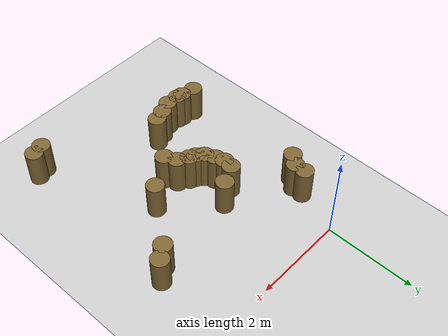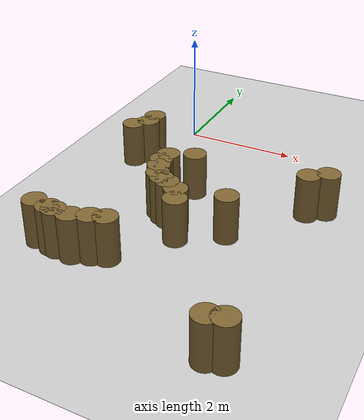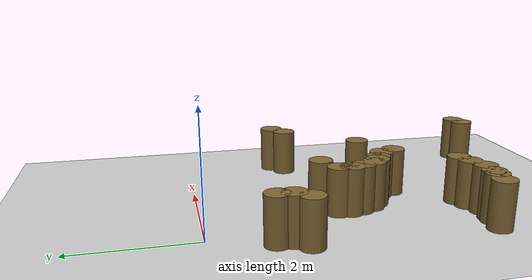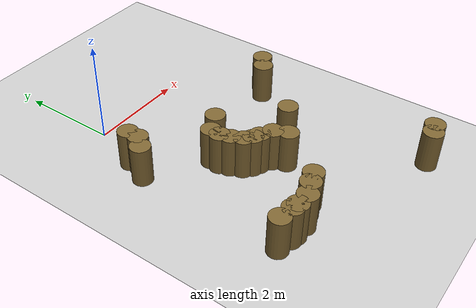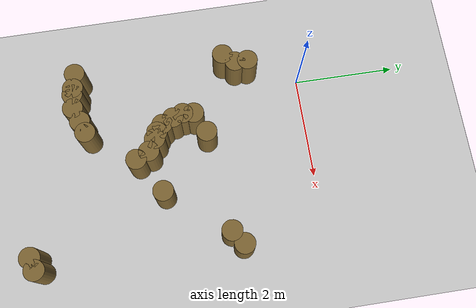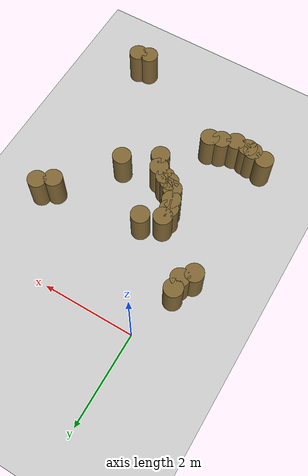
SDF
<sdf version="1.7">
 <world name="default">
  <model name="ground_plane">
   <static>1</static>
   <link name="link">
    <collision name="collision">
     <geometry><plane><normal>0 0 1</normal><size>100 100</size></plane></geometry>
     <surface><friction><ode><mu>100</mu><mu2>50</mu2></ode></friction></surface>
    </collision>
    <visual name="visual">
     <cast_shadows>0</cast_shadows>
     <geometry><plane><normal>0 0 1</normal><size>100 100</size></plane></geometry>
     <material>
      <script><uri>file://media/materials/scripts/gazebo.material</uri><name>Gazebo/Grey</name></script>
     </material>
    </visual>
   </link>
  </model>
  <model name="mini_cylinder_0_clone_0_clone_clone_clone_clone_4">
   <link name="link">
    <inertial>
     <mass>1</mass>
     <inertia><ixx>0.145833</ixx><ixy>0</ixy><ixz>0</ixz><iyy>0.145833</iyy><iyz>0</iyz><izz>0.125</izz></inertia>
    </inertial>
    <visual name="visual">
     <geometry><cylinder><radius>0.2</radius><length>0.8</length></cylinder></geometry>
     <material>
      <script><name>Gazebo/Grey</name><uri>file://media/materials/scripts/gazebo.material</uri></script>
      <shader type="vertex"><normal_map>__default__</normal_map></shader>
      <ambient>0.5 0.4 0.2 1</ambient>
      <diffuse>0.7 0.7 0.7 1</diffuse>
      <specular>0.01 0.01 0.01 1</specular>
      <emissive>0 0 0 1</emissive>
     </material>
    </visual>
    <collision name="collision">
     <geometry><cylinder><radius>0.2</radius><length>0.8</length></cylinder></geometry>
     <surface>
      <friction>
       <ode><mu>1</mu><mu2>1</mu2><fdir1>0 0 0</fdir1><slip1>0</slip1><slip2>0</slip2></ode>
       <torsional>
        <coefficient>1</coefficient>
        <patch_radius>0</patch_radius>
        <surface_radius>0</surface_radius>
        <use_patch_radius>1</use_patch_radius>
        <ode><slip>0</slip></ode>
       </torsional>
      </friction>
      <bounce><restitution_coefficient>0</restitution_coefficient><threshold>1e+06</threshold></bounce>
      <contact>
       <collide_without_contact>0</collide_without_contact>
       <collide_without_contact_bitmask>1</collide_without_contact_bitmask>
       <collide_bitmask>1</collide_bitmask>
       <ode>
        <soft_cfm>0</soft_cfm>
        <soft_erp>0.2</soft_erp>
        <kp>1e+13</kp>
        <kd>1</kd>
        <max_vel>0.01</max_vel>
        <min_depth>0</min_depth>
       </ode>
       <bullet>
        <split_impulse>1</split_impulse>
        <split_impulse_penetration_threshold>-0.01</split_impulse_penetration_threshold>
        <soft_cfm>0</soft_cfm>
        <soft_erp>0.2</soft_erp>
        <kp>1e+13</kp>
        <kd>1</kd>
       </bullet>
      </contact>
     </surface>
    </collision>
   </link>
   <static>1</static>
   <pose>-0.332515 -0.998036 0.4 0 -0 0</pose>
  </model>
  <model name="mini_cylinder_0_clone_0_clone_clone_clone_clone_5">
   <link name="link">
    <inertial>
     <mass>1</mass>
     <inertia><ixx>0.145833</ixx><ixy>0</ixy><ixz>0</ixz><iyy>0.145833</iyy><iyz>0</iyz><izz>0.125</izz></inertia>
    </inertial>
    <visual name="visual">
     <geometry><cylinder><radius>0.2</radius><length>0.8</length></cylinder></geometry>
     <material>
      <script><name>Gazebo/Grey</name><uri>file://media/materials/scripts/gazebo.material</uri></script>
      <shader type="vertex"><normal_map>__default__</normal_map></shader>
      <ambient>0.5 0.4 0.2 1</ambient>
      <diffuse>0.7 0.7 0.7 1</diffuse>
      <specular>0.01 0.01 0.01 1</specular>
      <emissive>0 0 0 1</emissive>
     </material>
    </visual>
    <collision name="collision">
     <geometry><cylinder><radius>0.2</radius><length>0.8</length></cylinder></geometry>
     <surface>
      <friction>
       <ode><mu>1</mu><mu2>1</mu2><fdir1>0 0 0</fdir1><slip1>0</slip1><slip2>0</slip2></ode>
       <torsional>
        <coefficient>1</coefficient>
        <patch_radius>0</patch_radius>
        <surface_radius>0</surface_radius>
        <use_patch_radius>1</use_patch_radius>
        <ode><slip>0</slip></ode>
       </torsional>
      </friction>
      <bounce><restitution_coefficient>0</restitution_coefficient><threshold>1e+06</threshold></bounce>
      <contact>
       <collide_without_contact>0</collide_without_contact>
       <collide_without_contact_bitmask>1</collide_without_contact_bitmask>
       <collide_bitmask>1</collide_bitmask>
       <ode>
        <soft_cfm>0</soft_cfm>
        <soft_erp>0.2</soft_erp>
        <kp>1e+13</kp>
        <kd>1</kd>
        <max_vel>0.01</max_vel>
        <min_depth>0</min_depth>
       </ode>
       <bullet>
        <split_impulse>1</split_impulse>
        <split_impulse_penetration_threshold>-0.01</split_impulse_penetration_threshold>
        <soft_cfm>0</soft_cfm>
        <soft_erp>0.2</soft_erp>
        <kp>1e+13</kp>
        <kd>1</kd>
       </bullet>
      </contact>
     </surface>
    </collision>
   </link>
   <static>1</static>
   <pose>0.594741 -2.19524 0.4 0 -0 0</pose>
  </model>
  <model name="mini_cylinder_0_clone_0_clone_clone_clone_clone_6">
   <link name="link">
    <inertial>
     <mass>1</mass>
     <inertia><ixx>0.145833</ixx><ixy>0</ixy><ixz>0</ixz><iyy>0.145833</iyy><iyz>0</iyz><izz>0.125</izz></inertia>
    </inertial>
    <visual name="visual">
     <geometry><cylinder><radius>0.2</radius><length>0.8</length></cylinder></geometry>
     <material>
      <script><name>Gazebo/Grey</name><uri>file://media/materials/scripts/gazebo.material</uri></script>
      <shader type="vertex"><normal_map>__default__</normal_map></shader>
      <ambient>0.5 0.4 0.2 1</ambient>
      <diffuse>0.7 0.7 0.7 1</diffuse>
      <specular>0.01 0.01 0.01 1</specular>
      <emissive>0 0 0 1</emissive>
     </material>
    </visual>
    <collision name="collision">
     <geometry><cylinder><radius>0.2</radius><length>0.8</length></cylinder></geometry>
     <surface>
      <friction>
       <ode><mu>1</mu><mu2>1</mu2><fdir1>0 0 0</fdir1><slip1>0</slip1><slip2>0</slip2></ode>
       <torsional>
        <coefficient>1</coefficient>
        <patch_radius>0</patch_radius>
        <surface_radius>0</surface_radius>
        <use_patch_radius>1</use_patch_radius>
        <ode><slip>0</slip></ode>
       </torsional>
      </friction>
      <bounce><restitution_coefficient>0</restitution_coefficient><threshold>1e+06</threshold></bounce>
      <contact>
       <collide_without_contact>0</collide_without_contact>
       <collide_without_contact_bitmask>1</collide_without_contact_bitmask>
       <collide_bitmask>1</collide_bitmask>
       <ode>
        <soft_cfm>0</soft_cfm>
        <soft_erp>0.2</soft_erp>
        <kp>1e+13</kp>
        <kd>1</kd>
        <max_vel>0.01</max_vel>
        <min_depth>0</min_depth>
       </ode>
       <bullet>
        <split_impulse>1</split_impulse>
        <split_impulse_penetration_threshold>-0.01</split_impulse_penetration_threshold>
        <soft_cfm>0</soft_cfm>
        <soft_erp>0.2</soft_erp>
        <kp>1e+13</kp>
        <kd>1</kd>
       </bullet>
      </contact>
     </surface>
    </collision>
   </link>
   <static>1</static>
   <pose>1 -2 0.4 0 -0 0</pose>
  </model>
  <model name="mini_cylinder_0_clone_0_clone_clone_clone_clone_7">
   <link name="link">
    <inertial>
     <mass>1</mass>
     <inertia><ixx>0.145833</ixx><ixy>0</ixy><ixz>0</ixz><iyy>0.145833</iyy><iyz>0</iyz><izz>0.125</izz></inertia>
    </inertial>
    <visual name="visual">
     <geometry><cylinder><radius>0.2</radius><length>0.8</length></cylinder></geometry>
     <material>
      <script><name>Gazebo/Grey</name><uri>file://media/materials/scripts/gazebo.material</uri></script>
      <shader type="vertex"><normal_map>__default__</normal_map></shader>
      <ambient>0.5 0.4 0.2 1</ambient>
      <diffuse>0.7 0.7 0.7 1</diffuse>
      <specular>0.01 0.01 0.01 1</specular>
      <emissive>0 0 0 1</emissive>
     </material>
    </visual>
    <collision name="collision">
     <geometry><cylinder><radius>0.2</radius><length>0.8</length></cylinder></geometry>
     <surface>
      <friction>
       <ode><mu>1</mu><mu2>1</mu2><fdir1>0 0 0</fdir1><slip1>0</slip1><slip2>0</slip2></ode>
       <torsional>
        <coefficient>1</coefficient>
        <patch_radius>0</patch_radius>
        <surface_radius>0</surface_radius>
        <use_patch_radius>1</use_patch_radius>
        <ode><slip>0</slip></ode>
       </torsional>
      </friction>
      <bounce><restitution_coefficient>0</restitution_coefficient><threshold>1e+06</threshold></bounce>
      <contact>
       <collide_without_contact>0</collide_without_contact>
       <collide_without_contact_bitmask>1</collide_without_contact_bitmask>
       <collide_bitmask>1</collide_bitmask>
       <ode>
        <soft_cfm>0</soft_cfm>
        <soft_erp>0.2</soft_erp>
        <kp>1e+13</kp>
        <kd>1</kd>
        <max_vel>0.01</max_vel>
        <min_depth>0</min_depth>
       </ode>
       <bullet>
        <split_impulse>1</split_impulse>
        <split_impulse_penetration_threshold>-0.01</split_impulse_penetration_threshold>
        <soft_cfm>0</soft_cfm>
        <soft_erp>0.2</soft_erp>
        <kp>1e+13</kp>
        <kd>1</kd>
       </bullet>
      </contact>
     </surface>
    </collision>
   </link>
   <static>1</static>
   <pose>2.95172 -1.80895 0.4 0 -0 0</pose>
  </model>
  <model name="mini_cylinder_0_clone_0_clone_clone_clone_clone_8">
   <link name="link">
    <inertial>
     <mass>1</mass>
     <inertia><ixx>0.145833</ixx><ixy>0</ixy><ixz>0</ixz><iyy>0.145833</iyy><iyz>0</iyz><izz>0.125</izz></inertia>
    </inertial>
    <visual name="visual">
     <geometry><cylinder><radius>0.2</radius><length>0.8</length></cylinder></geometry>
     <material>
      <script><name>Gazebo/Grey</name><uri>file://media/materials/scripts/gazebo.material</uri></script>
      <shader type="vertex"><normal_map>__default__</normal_map></shader>
      <ambient>0.5 0.4 0.2 1</ambient>
      <diffuse>0.7 0.7 0.7 1</diffuse>
      <specular>0.01 0.01 0.01 1</specular>
      <emissive>0 0 0 1</emissive>
     </material>
    </visual>
    <collision name="collision">
     <geometry><cylinder><radius>0.2</radius><length>0.8</length></cylinder></geometry>
     <surface>
      <friction>
       <ode><mu>1</mu><mu2>1</mu2><fdir1>0 0 0</fdir1><slip1>0</slip1><slip2>0</slip2></ode>
       <torsional>
        <coefficient>1</coefficient>
        <patch_radius>0</patch_radius>
        <surface_radius>0</surface_radius>
        <use_patch_radius>1</use_patch_radius>
        <ode><slip>0</slip></ode>
       </torsional>
      </friction>
      <bounce><restitution_coefficient>0</restitution_coefficient><threshold>1e+06</threshold></bounce>
      <contact>
       <collide_without_contact>0</collide_without_contact>
       <collide_without_contact_bitmask>1</collide_without_contact_bitmask>
       <collide_bitmask>1</collide_bitmask>
       <ode>
        <soft_cfm>0</soft_cfm>
        <soft_erp>0.2</soft_erp>
        <kp>1e+13</kp>
        <kd>1</kd>
        <max_vel>0.01</max_vel>
        <min_depth>0</min_depth>
       </ode>
       <bullet>
        <split_impulse>1</split_impulse>
        <split_impulse_penetration_threshold>-0.01</split_impulse_penetration_threshold>
        <soft_cfm>0</soft_cfm>
        <soft_erp>0.2</soft_erp>
        <kp>1e+13</kp>
        <kd>1</kd>
       </bullet>
      </contact>
     </surface>
    </collision>
   </link>
   <static>1</static>
   <pose>3.22202 -1.6158 0.4 0 -0 0</pose>
  </model>
  <model name="mini_cylinder_0_clone_0_clone_clone_clone_clone_11">
   <link name="link">
    <inertial>
     <mass>1</mass>
     <inertia><ixx>0.145833</ixx><ixy>0</ixy><ixz>0</ixz><iyy>0.145833</iyy><iyz>0</iyz><izz>0.125</izz></inertia>
    </inertial>
    <visual name="visual">
     <geometry><cylinder><radius>0.2</radius><length>0.8</length></cylinder></geometry>
     <material>
      <script><name>Gazebo/Grey</name><uri>file://media/materials/scripts/gazebo.material</uri></script>
      <shader type="vertex"><normal_map>__default__</normal_map></shader>
      <ambient>0.5 0.4 0.2 1</ambient>
      <diffuse>0.7 0.7 0.7 1</diffuse>
      <specular>0.01 0.01 0.01 1</specular>
      <emissive>0 0 0 1</emissive>
     </material>
    </visual>
    <collision name="collision">
     <geometry><cylinder><radius>0.2</radius><length>0.8</length></cylinder></geometry>
     <surface>
      <friction>
       <ode><mu>1</mu><mu2>1</mu2><fdir1>0 0 0</fdir1><slip1>0</slip1><slip2>0</slip2></ode>
       <torsional>
        <coefficient>1</coefficient>
        <patch_radius>0</patch_radius>
        <surface_radius>0</surface_radius>
        <use_patch_radius>1</use_patch_radius>
        <ode><slip>0</slip></ode>
       </torsional>
      </friction>
      <bounce><restitution_coefficient>0</restitution_coefficient><threshold>1e+06</threshold></bounce>
      <contact>
       <collide_without_contact>0</collide_without_contact>
       <collide_without_contact_bitmask>1</collide_without_contact_bitmask>
       <collide_bitmask>1</collide_bitmask>
       <ode>
        <soft_cfm>0</soft_cfm>
        <soft_erp>0.2</soft_erp>
        <kp>1e+13</kp>
        <kd>1</kd>
        <max_vel>0.01</max_vel>
        <min_depth>0</min_depth>
       </ode>
       <bullet>
        <split_impulse>1</split_impulse>
        <split_impulse_penetration_threshold>-0.01</split_impulse_penetration_threshold>
        <soft_cfm>0</soft_cfm>
        <soft_erp>0.2</soft_erp>
        <kp>1e+13</kp>
        <kd>1</kd>
       </bullet>
      </contact>
     </surface>
    </collision>
   </link>
   <static>1</static>
   <pose>2.02446 -2.96819 0.4 0 -0 0</pose>
  </model>
  <model name="mini_cylinder_0_clone_0_clone_clone_clone_clone_clone_17">
   <link name="link">
    <inertial>
     <mass>1</mass>
     <inertia><ixx>0.145833</ixx><ixy>0</ixy><ixz>0</ixz><iyy>0.145833</iyy><iyz>0</iyz><izz>0.125</izz></inertia>
    </inertial>
    <visual name="visual">
     <geometry><cylinder><radius>0.2</radius><length>0.8</length></cylinder></geometry>
     <material>
      <script><name>Gazebo/Grey</name><uri>file://media/materials/scripts/gazebo.material</uri></script>
      <shader type="vertex"><normal_map>__default__</normal_map></shader>
      <ambient>0.5 0.4 0.2 1</ambient>
      <diffuse>0.7 0.7 0.7 1</diffuse>
      <specular>0.01 0.01 0.01 1</specular>
      <emissive>0 0 0 1</emissive>
     </material>
    </visual>
    <collision name="collision">
     <geometry><cylinder><radius>0.2</radius><length>0.8</length></cylinder></geometry>
     <surface>
      <friction>
       <ode><mu>1</mu><mu2>1</mu2><fdir1>0 0 0</fdir1><slip1>0</slip1><slip2>0</slip2></ode>
       <torsional>
        <coefficient>1</coefficient>
        <patch_radius>0</patch_radius>
        <surface_radius>0</surface_radius>
        <use_patch_radius>1</use_patch_radius>
        <ode><slip>0</slip></ode>
       </torsional>
      </friction>
      <bounce><restitution_coefficient>0</restitution_coefficient><threshold>1e+06</threshold></bounce>
      <contact>
       <collide_without_contact>0</collide_without_contact>
       <collide_without_contact_bitmask>1</collide_without_contact_bitmask>
       <collide_bitmask>1</collide_bitmask>
       <ode>
        <soft_cfm>0</soft_cfm>
        <soft_erp>0.2</soft_erp>
        <kp>1e+13</kp>
        <kd>1</kd>
        <max_vel>0.01</max_vel>
        <min_depth>0</min_depth>
       </ode>
       <bullet>
        <split_impulse>1</split_impulse>
        <split_impulse_penetration_threshold>-0.01</split_impulse_penetration_threshold>
        <soft_cfm>0</soft_cfm>
        <soft_erp>0.2</soft_erp>
        <kp>1e+13</kp>
        <kd>1</kd>
       </bullet>
      </contact>
     </surface>
    </collision>
   </link>
   <static>1</static>
   <pose>-0.336683 -1.2443 0.4 0 -0 0</pose>
  </model>
  <model name="mini_cylinder_0_clone_0_clone_clone_clone_clone_clone_18">
   <link name="link">
    <inertial>
     <mass>1</mass>
     <inertia><ixx>0.145833</ixx><ixy>0</ixy><ixz>0</ixz><iyy>0.145833</iyy><iyz>0</iyz><izz>0.125</izz></inertia>
    </inertial>
    <visual name="visual">
     <geometry><cylinder><radius>0.2</radius><length>0.8</length></cylinder></geometry>
     <material>
      <script><name>Gazebo/Grey</name><uri>file://media/materials/scripts/gazebo.material</uri></script>
      <shader type="vertex"><normal_map>__default__</normal_map></shader>
      <ambient>0.5 0.4 0.2 1</ambient>
      <diffuse>0.7 0.7 0.7 1</diffuse>
      <specular>0.01 0.01 0.01 1</specular>
      <emissive>0 0 0 1</emissive>
     </material>
    </visual>
    <collision name="collision">
     <geometry><cylinder><radius>0.2</radius><length>0.8</length></cylinder></geometry>
     <surface>
      <friction>
       <ode><mu>1</mu><mu2>1</mu2><fdir1>0 0 0</fdir1><slip1>0</slip1><slip2>0</slip2></ode>
       <torsional>
        <coefficient>1</coefficient>
        <patch_radius>0</patch_radius>
        <surface_radius>0</surface_radius>
        <use_patch_radius>1</use_patch_radius>
        <ode><slip>0</slip></ode>
       </torsional>
      </friction>
      <bounce><restitution_coefficient>0</restitution_coefficient><threshold>1e+06</threshold></bounce>
      <contact>
       <collide_without_contact>0</collide_without_contact>
       <collide_without_contact_bitmask>1</collide_without_contact_bitmask>
       <collide_bitmask>1</collide_bitmask>
       <ode>
        <soft_cfm>0</soft_cfm>
        <soft_erp>0.2</soft_erp>
        <kp>1e+13</kp>
        <kd>1</kd>
        <max_vel>0.01</max_vel>
        <min_depth>0</min_depth>
       </ode>
       <bullet>
        <split_impulse>1</split_impulse>
        <split_impulse_penetration_threshold>-0.01</split_impulse_penetration_threshold>
        <soft_cfm>0</soft_cfm>
        <soft_erp>0.2</soft_erp>
        <kp>1e+13</kp>
        <kd>1</kd>
       </bullet>
      </contact>
     </surface>
    </collision>
   </link>
   <static>1</static>
   <pose>-0.525422 -1.4645 0.4 0 -0 0</pose>
  </model>
  <model name="mini_cylinder_0_clone_0_clone_clone_clone_clone_clone_19">
   <link name="link">
    <inertial>
     <mass>1</mass>
     <inertia><ixx>0.145833</ixx><ixy>0</ixy><ixz>0</ixz><iyy>0.145833</iyy><iyz>0</iyz><izz>0.125</izz></inertia>
    </inertial>
    <visual name="visual">
     <geometry><cylinder><radius>0.2</radius><length>0.8</length></cylinder></geometry>
     <material>
      <script><name>Gazebo/Grey</name><uri>file://media/materials/scripts/gazebo.material</uri></script>
      <shader type="vertex"><normal_map>__default__</normal_map></shader>
      <ambient>0.5 0.4 0.2 1</ambient>
      <diffuse>0.7 0.7 0.7 1</diffuse>
      <specular>0.01 0.01 0.01 1</specular>
      <emissive>0 0 0 1</emissive>
     </material>
    </visual>
    <collision name="collision">
     <geometry><cylinder><radius>0.2</radius><length>0.8</length></cylinder></geometry>
     <surface>
      <friction>
       <ode><mu>1</mu><mu2>1</mu2><fdir1>0 0 0</fdir1><slip1>0</slip1><slip2>0</slip2></ode>
       <torsional>
        <coefficient>1</coefficient>
        <patch_radius>0</patch_radius>
        <surface_radius>0</surface_radius>
        <use_patch_radius>1</use_patch_radius>
        <ode><slip>0</slip></ode>
       </torsional>
      </friction>
      <bounce><restitution_coefficient>0</restitution_coefficient><threshold>1e+06</threshold></bounce>
      <contact>
       <collide_without_contact>0</collide_without_contact>
       <collide_without_contact_bitmask>1</collide_without_contact_bitmask>
       <collide_bitmask>1</collide_bitmask>
       <ode>
        <soft_cfm>0</soft_cfm>
        <soft_erp>0.2</soft_erp>
        <kp>1e+13</kp>
        <kd>1</kd>
        <max_vel>0.01</max_vel>
        <min_depth>0</min_depth>
       </ode>
       <bullet>
        <split_impulse>1</split_impulse>
        <split_impulse_penetration_threshold>-0.01</split_impulse_penetration_threshold>
        <soft_cfm>0</soft_cfm>
        <soft_erp>0.2</soft_erp>
        <kp>1e+13</kp>
        <kd>1</kd>
       </bullet>
      </contact>
     </surface>
    </collision>
   </link>
   <static>1</static>
   <pose>0.669924 -4.29559 0.4 0 -0 0</pose>
  </model>
  <model name="mini_cylinder_0_clone_0_clone_clone_clone_clone_clone_20">
   <link name="link">
    <inertial>
     <mass>1</mass>
     <inertia><ixx>0.145833</ixx><ixy>0</ixy><ixz>0</ixz><iyy>0.145833</iyy><iyz>0</iyz><izz>0.125</izz></inertia>
    </inertial>
    <visual name="visual">
     <geometry><cylinder><radius>0.2</radius><length>0.8</length></cylinder></geometry>
     <material>
      <script><name>Gazebo/Grey</name><uri>file://media/materials/scripts/gazebo.material</uri></script>
      <shader type="vertex"><normal_map>__default__</normal_map></shader>
      <ambient>0.5 0.4 0.2 1</ambient>
      <diffuse>0.7 0.7 0.7 1</diffuse>
      <specular>0.01 0.01 0.01 1</specular>
      <emissive>0 0 0 1</emissive>
     </material>
    </visual>
    <collision name="collision">
     <geometry><cylinder><radius>0.2</radius><length>0.8</length></cylinder></geometry>
     <surface>
      <friction>
       <ode><mu>1</mu><mu2>1</mu2><fdir1>0 0 0</fdir1><slip1>0</slip1><slip2>0</slip2></ode>
       <torsional>
        <coefficient>1</coefficient>
        <patch_radius>0</patch_radius>
        <surface_radius>0</surface_radius>
        <use_patch_radius>1</use_patch_radius>
        <ode><slip>0</slip></ode>
       </torsional>
      </friction>
      <bounce><restitution_coefficient>0</restitution_coefficient><threshold>1e+06</threshold></bounce>
      <contact>
       <collide_without_contact>0</collide_without_contact>
       <collide_without_contact_bitmask>1</collide_without_contact_bitmask>
       <collide_bitmask>1</collide_bitmask>
       <ode>
        <soft_cfm>0</soft_cfm>
        <soft_erp>0.2</soft_erp>
        <kp>1e+13</kp>
        <kd>1</kd>
        <max_vel>0.01</max_vel>
        <min_depth>0</min_depth>
       </ode>
       <bullet>
        <split_impulse>1</split_impulse>
        <split_impulse_penetration_threshold>-0.01</split_impulse_penetration_threshold>
        <soft_cfm>0</soft_cfm>
        <soft_erp>0.2</soft_erp>
        <kp>1e+13</kp>
        <kd>1</kd>
       </bullet>
      </contact>
     </surface>
    </collision>
   </link>
   <static>1</static>
   <pose>0.434005 -4.37423 0.4 0 -0 0</pose>
  </model>
  <model name="mini_cylinder_0_clone_0_clone_clone_clone_clone_clone_21">
   <link name="link">
    <inertial>
     <mass>1</mass>
     <inertia><ixx>0.145833</ixx><ixy>0</ixy><ixz>0</ixz><iyy>0.145833</iyy><iyz>0</iyz><izz>0.125</izz></inertia>
    </inertial>
    <visual name="visual">
     <geometry><cylinder><radius>0.2</radius><length>0.8</length></cylinder></geometry>
     <material>
      <script><name>Gazebo/Grey</name><uri>file://media/materials/scripts/gazebo.material</uri></script>
      <shader type="vertex"><normal_map>__default__</normal_map></shader>
      <ambient>0.5 0.4 0.2 1</ambient>
      <diffuse>0.7 0.7 0.7 1</diffuse>
      <specular>0.01 0.01 0.01 1</specular>
      <emissive>0 0 0 1</emissive>
     </material>
    </visual>
    <collision name="collision">
     <geometry><cylinder><radius>0.2</radius><length>0.8</length></cylinder></geometry>
     <surface>
      <friction>
       <ode><mu>1</mu><mu2>1</mu2><fdir1>0 0 0</fdir1><slip1>0</slip1><slip2>0</slip2></ode>
       <torsional>
        <coefficient>1</coefficient>
        <patch_radius>0</patch_radius>
        <surface_radius>0</surface_radius>
        <use_patch_radius>1</use_patch_radius>
        <ode><slip>0</slip></ode>
       </torsional>
      </friction>
      <bounce><restitution_coefficient>0</restitution_coefficient><threshold>1e+06</threshold></bounce>
      <contact>
       <collide_without_contact>0</collide_without_contact>
       <collide_without_contact_bitmask>1</collide_without_contact_bitmask>
       <collide_bitmask>1</collide_bitmask>
       <ode>
        <soft_cfm>0</soft_cfm>
        <soft_erp>0.2</soft_erp>
        <kp>1e+13</kp>
        <kd>1</kd>
        <max_vel>0.01</max_vel>
        <min_depth>0</min_depth>
       </ode>
       <bullet>
        <split_impulse>1</split_impulse>
        <split_impulse_penetration_threshold>-0.01</split_impulse_penetration_threshold>
        <soft_cfm>0</soft_cfm>
        <soft_erp>0.2</soft_erp>
        <kp>1e+13</kp>
        <kd>1</kd>
       </bullet>
      </contact>
     </surface>
    </collision>
   </link>
   <static>1</static>
   <pose>0.150891 -4.48433 0.4 0 -0 0</pose>
  </model>
  <model name="mini_cylinder_0_clone_0_clone_clone_clone_clone_clone_22">
   <link name="link">
    <inertial>
     <mass>1</mass>
     <inertia><ixx>0.145833</ixx><ixy>0</ixy><ixz>0</ixz><iyy>0.145833</iyy><iyz>0</iyz><izz>0.125</izz></inertia>
    </inertial>
    <visual name="visual">
     <geometry><cylinder><radius>0.2</radius><length>0.8</length></cylinder></geometry>
     <material>
      <script><name>Gazebo/Grey</name><uri>file://media/materials/scripts/gazebo.material</uri></script>
      <shader type="vertex"><normal_map>__default__</normal_map></shader>
      <ambient>0.5 0.4 0.2 1</ambient>
      <diffuse>0.7 0.7 0.7 1</diffuse>
      <specular>0.01 0.01 0.01 1</specular>
      <emissive>0 0 0 1</emissive>
     </material>
    </visual>
    <collision name="collision">
     <geometry><cylinder><radius>0.2</radius><length>0.8</length></cylinder></geometry>
     <surface>
      <friction>
       <ode><mu>1</mu><mu2>1</mu2><fdir1>0 0 0</fdir1><slip1>0</slip1><slip2>0</slip2></ode>
       <torsional>
        <coefficient>1</coefficient>
        <patch_radius>0</patch_radius>
        <surface_radius>0</surface_radius>
        <use_patch_radius>1</use_patch_radius>
        <ode><slip>0</slip></ode>
       </torsional>
      </friction>
      <bounce><restitution_coefficient>0</restitution_coefficient><threshold>1e+06</threshold></bounce>
      <contact>
       <collide_without_contact>0</collide_without_contact>
       <collide_without_contact_bitmask>1</collide_without_contact_bitmask>
       <collide_bitmask>1</collide_bitmask>
       <ode>
        <soft_cfm>0</soft_cfm>
        <soft_erp>0.2</soft_erp>
        <kp>1e+13</kp>
        <kd>1</kd>
        <max_vel>0.01</max_vel>
        <min_depth>0</min_depth>
       </ode>
       <bullet>
        <split_impulse>1</split_impulse>
        <split_impulse_penetration_threshold>-0.01</split_impulse_penetration_threshold>
        <soft_cfm>0</soft_cfm>
        <soft_erp>0.2</soft_erp>
        <kp>1e+13</kp>
        <kd>1</kd>
       </bullet>
      </contact>
     </surface>
    </collision>
   </link>
   <static>1</static>
   <pose>-0.132213 -4.4686 0.4 0 -0 0</pose>
  </model>
  <model name="mini_cylinder_0_clone_0_clone_clone_clone_clone_clone_33">
   <link name="link">
    <inertial>
     <mass>1</mass>
     <inertia><ixx>0.145833</ixx><ixy>0</ixy><ixz>0</ixz><iyy>0.145833</iyy><iyz>0</iyz><izz>0.125</izz></inertia>
    </inertial>
    <visual name="visual">
     <geometry><cylinder><radius>0.2</radius><length>0.8</length></cylinder></geometry>
     <material>
      <script><name>Gazebo/Grey</name><uri>file://media/materials/scripts/gazebo.material</uri></script>
      <shader type="vertex"><normal_map>__default__</normal_map></shader>
      <ambient>0.5 0.4 0.2 1</ambient>
      <diffuse>0.7 0.7 0.7 1</diffuse>
      <specular>0.01 0.01 0.01 1</specular>
      <emissive>0 0 0 1</emissive>
     </material>
    </visual>
    <collision name="collision">
     <geometry><cylinder><radius>0.2</radius><length>0.8</length></cylinder></geometry>
     <surface>
      <friction>
       <ode><mu>1</mu><mu2>1</mu2><fdir1>0 0 0</fdir1><slip1>0</slip1><slip2>0</slip2></ode>
       <torsional>
        <coefficient>1</coefficient>
        <patch_radius>0</patch_radius>
        <surface_radius>0</surface_radius>
        <use_patch_radius>1</use_patch_radius>
        <ode><slip>0</slip></ode>
       </torsional>
      </friction>
      <bounce><restitution_coefficient>0</restitution_coefficient><threshold>1e+06</threshold></bounce>
      <contact>
       <collide_without_contact>0</collide_without_contact>
       <collide_without_contact_bitmask>1</collide_without_contact_bitmask>
       <collide_bitmask>1</collide_bitmask>
       <ode>
        <soft_cfm>0</soft_cfm>
        <soft_erp>0.2</soft_erp>
        <kp>1e+13</kp>
        <kd>1</kd>
        <max_vel>0.01</max_vel>
        <min_depth>0</min_depth>
       </ode>
       <bullet>
        <split_impulse>1</split_impulse>
        <split_impulse_penetration_threshold>-0.01</split_impulse_penetration_threshold>
        <soft_cfm>0</soft_cfm>
        <soft_erp>0.2</soft_erp>
        <kp>1e+13</kp>
        <kd>1</kd>
       </bullet>
      </contact>
     </surface>
    </collision>
   </link>
   <static>1</static>
   <pose>3.12408 -5.45976 0.4 0 -0 0</pose>
  </model>
  <model name="mini_cylinder_0_clone_0_clone_clone_clone_clone_clone_34">
   <link name="link">
    <inertial>
     <mass>1</mass>
     <inertia><ixx>0.145833</ixx><ixy>0</ixy><ixz>0</ixz><iyy>0.145833</iyy><iyz>0</iyz><izz>0.125</izz></inertia>
    </inertial>
    <visual name="visual">
     <geometry><cylinder><radius>0.2</radius><length>0.8</length></cylinder></geometry>
     <material>
      <script><name>Gazebo/Grey</name><uri>file://media/materials/scripts/gazebo.material</uri></script>
      <shader type="vertex"><normal_map>__default__</normal_map></shader>
      <ambient>0.5 0.4 0.2 1</ambient>
      <diffuse>0.7 0.7 0.7 1</diffuse>
      <specular>0.01 0.01 0.01 1</specular>
      <emissive>0 0 0 1</emissive>
     </material>
    </visual>
    <collision name="collision">
     <geometry><cylinder><radius>0.2</radius><length>0.8</length></cylinder></geometry>
     <surface>
      <friction>
       <ode><mu>1</mu><mu2>1</mu2><fdir1>0 0 0</fdir1><slip1>0</slip1><slip2>0</slip2></ode>
       <torsional>
        <coefficient>1</coefficient>
        <patch_radius>0</patch_radius>
        <surface_radius>0</surface_radius>
        <use_patch_radius>1</use_patch_radius>
        <ode><slip>0</slip></ode>
       </torsional>
      </friction>
      <bounce><restitution_coefficient>0</restitution_coefficient><threshold>1e+06</threshold></bounce>
      <contact>
       <collide_without_contact>0</collide_without_contact>
       <collide_without_contact_bitmask>1</collide_without_contact_bitmask>
       <collide_bitmask>1</collide_bitmask>
       <ode>
        <soft_cfm>0</soft_cfm>
        <soft_erp>0.2</soft_erp>
        <kp>1e+13</kp>
        <kd>1</kd>
        <max_vel>0.01</max_vel>
        <min_depth>0</min_depth>
       </ode>
       <bullet>
        <split_impulse>1</split_impulse>
        <split_impulse_penetration_threshold>-0.01</split_impulse_penetration_threshold>
        <soft_cfm>0</soft_cfm>
        <soft_erp>0.2</soft_erp>
        <kp>1e+13</kp>
        <kd>1</kd>
       </bullet>
      </contact>
     </surface>
    </collision>
   </link>
   <static>1</static>
   <pose>2.88815 -5.52267 0.4 0 -0 0</pose>
  </model>
  <model name="mini_cylinder_0_clone_0_clone_clone_clone_clone_clone_49_clone_48">
   <link name="link">
    <inertial>
     <mass>1</mass>
     <inertia><ixx>0.145833</ixx><ixy>0</ixy><ixz>0</ixz><iyy>0.145833</iyy><iyz>0</iyz><izz>0.125</izz></inertia>
    </inertial>
    <visual name="visual">
     <geometry><cylinder><radius>0.2</radius><length>0.8</length></cylinder></geometry>
     <material>
      <script><name>Gazebo/Grey</name><uri>file://media/materials/scripts/gazebo.material</uri></script>
      <shader type="vertex"><normal_map>__default__</normal_map></shader>
      <ambient>0.5 0.4 0.2 1</ambient>
      <diffuse>0.7 0.7 0.7 1</diffuse>
      <specular>0.01 0.01 0.01 1</specular>
      <emissive>0 0 0 1</emissive>
     </material>
    </visual>
    <collision name="collision">
     <geometry><cylinder><radius>0.2</radius><length>0.8</length></cylinder></geometry>
     <surface>
      <friction>
       <ode><mu>1</mu><mu2>1</mu2><fdir1>0 0 0</fdir1><slip1>0</slip1><slip2>0</slip2></ode>
       <torsional>
        <coefficient>1</coefficient>
        <patch_radius>0</patch_radius>
        <surface_radius>0</surface_radius>
        <use_patch_radius>1</use_patch_radius>
        <ode><slip>0</slip></ode>
       </torsional>
      </friction>
      <bounce><restitution_coefficient>0</restitution_coefficient><threshold>1e+06</threshold></bounce>
      <contact>
       <collide_without_contact>0</collide_without_contact>
       <collide_without_contact_bitmask>1</collide_without_contact_bitmask>
       <collide_bitmask>1</collide_bitmask>
       <ode>
        <soft_cfm>0</soft_cfm>
        <soft_erp>0.2</soft_erp>
        <kp>1e+13</kp>
        <kd>1</kd>
        <max_vel>0.01</max_vel>
        <min_depth>0</min_depth>
       </ode>
       <bullet>
        <split_impulse>1</split_impulse>
        <split_impulse_penetration_threshold>-0.01</split_impulse_penetration_threshold>
        <soft_cfm>0</soft_cfm>
        <soft_erp>0.2</soft_erp>
        <kp>1e+13</kp>
        <kd>1</kd>
       </bullet>
      </contact>
     </surface>
    </collision>
   </link>
   <static>1</static>
   <pose>0.572349 -2.40465 0.4 0 -0 0</pose>
  </model>
  <model name="mini_cylinder_0_clone_0_clone_clone_clone_clone_clone_49_clone_49">
   <link name="link">
    <inertial>
     <mass>1</mass>
     <inertia><ixx>0.145833</ixx><ixy>0</ixy><ixz>0</ixz><iyy>0.145833</iyy><iyz>0</iyz><izz>0.125</izz></inertia>
    </inertial>
    <visual name="visual">
     <geometry><cylinder><radius>0.2</radius><length>0.8</length></cylinder></geometry>
     <material>
      <script><name>Gazebo/Grey</name><uri>file://media/materials/scripts/gazebo.material</uri></script>
      <shader type="vertex"><normal_map>__default__</normal_map></shader>
      <ambient>0.5 0.4 0.2 1</ambient>
      <diffuse>0.7 0.7 0.7 1</diffuse>
      <specular>0.01 0.01 0.01 1</specular>
      <emissive>0 0 0 1</emissive>
     </material>
    </visual>
    <collision name="collision">
     <geometry><cylinder><radius>0.2</radius><length>0.8</length></cylinder></geometry>
     <surface>
      <friction>
       <ode><mu>1</mu><mu2>1</mu2><fdir1>0 0 0</fdir1><slip1>0</slip1><slip2>0</slip2></ode>
       <torsional>
        <coefficient>1</coefficient>
        <patch_radius>0</patch_radius>
        <surface_radius>0</surface_radius>
        <use_patch_radius>1</use_patch_radius>
        <ode><slip>0</slip></ode>
       </torsional>
      </friction>
      <bounce><restitution_coefficient>0</restitution_coefficient><threshold>1e+06</threshold></bounce>
      <contact>
       <collide_without_contact>0</collide_without_contact>
       <collide_without_contact_bitmask>1</collide_without_contact_bitmask>
       <collide_bitmask>1</collide_bitmask>
       <ode>
        <soft_cfm>0</soft_cfm>
        <soft_erp>0.2</soft_erp>
        <kp>1e+13</kp>
        <kd>1</kd>
        <max_vel>0.01</max_vel>
        <min_depth>0</min_depth>
       </ode>
       <bullet>
        <split_impulse>1</split_impulse>
        <split_impulse_penetration_threshold>-0.01</split_impulse_penetration_threshold>
        <soft_cfm>0</soft_cfm>
        <soft_erp>0.2</soft_erp>
        <kp>1e+13</kp>
        <kd>1</kd>
       </bullet>
      </contact>
     </surface>
    </collision>
   </link>
   <static>1</static>
   <pose>0.631759 -2.60269 0.4 0 -0 0</pose>
  </model>
  <model name="mini_cylinder_0_clone_0_clone_clone_clone_clone_clone_49_clone_50">
   <link name="link">
    <inertial>
     <mass>1</mass>
     <inertia><ixx>0.145833</ixx><ixy>0</ixy><ixz>0</ixz><iyy>0.145833</iyy><iyz>0</iyz><izz>0.125</izz></inertia>
    </inertial>
    <visual name="visual">
     <geometry><cylinder><radius>0.2</radius><length>0.8</length></cylinder></geometry>
     <material>
      <script><name>Gazebo/Grey</name><uri>file://media/materials/scripts/gazebo.material</uri></script>
      <shader type="vertex"><normal_map>__default__</normal_map></shader>
      <ambient>0.5 0.4 0.2 1</ambient>
      <diffuse>0.7 0.7 0.7 1</diffuse>
      <specular>0.01 0.01 0.01 1</specular>
      <emissive>0 0 0 1</emissive>
     </material>
    </visual>
    <collision name="collision">
     <geometry><cylinder><radius>0.2</radius><length>0.8</length></cylinder></geometry>
     <surface>
      <friction>
       <ode><mu>1</mu><mu2>1</mu2><fdir1>0 0 0</fdir1><slip1>0</slip1><slip2>0</slip2></ode>
       <torsional>
        <coefficient>1</coefficient>
        <patch_radius>0</patch_radius>
        <surface_radius>0</surface_radius>
        <use_patch_radius>1</use_patch_radius>
        <ode><slip>0</slip></ode>
       </torsional>
      </friction>
      <bounce><restitution_coefficient>0</restitution_coefficient><threshold>1e+06</threshold></bounce>
      <contact>
       <collide_without_contact>0</collide_without_contact>
       <collide_without_contact_bitmask>1</collide_without_contact_bitmask>
       <collide_bitmask>1</collide_bitmask>
       <ode>
        <soft_cfm>0</soft_cfm>
        <soft_erp>0.2</soft_erp>
        <kp>1e+13</kp>
        <kd>1</kd>
        <max_vel>0.01</max_vel>
        <min_depth>0</min_depth>
       </ode>
       <bullet>
        <split_impulse>1</split_impulse>
        <split_impulse_penetration_threshold>-0.01</split_impulse_penetration_threshold>
        <soft_cfm>0</soft_cfm>
        <soft_erp>0.2</soft_erp>
        <kp>1e+13</kp>
        <kd>1</kd>
       </bullet>
      </contact>
     </surface>
    </collision>
   </link>
   <static>1</static>
   <pose>0.730781 -2.82055 0.4 0 -0 0</pose>
  </model>
  <model name="mini_cylinder_0_clone_0_clone_clone_clone_clone_clone_49_clone_51">
   <link name="link">
    <inertial>
     <mass>1</mass>
     <inertia><ixx>0.145833</ixx><ixy>0</ixy><ixz>0</ixz><iyy>0.145833</iyy><iyz>0</iyz><izz>0.125</izz></inertia>
    </inertial>
    <visual name="visual">
     <geometry><cylinder><radius>0.2</radius><length>0.8</length></cylinder></geometry>
     <material>
      <script><name>Gazebo/Grey</name><uri>file://media/materials/scripts/gazebo.material</uri></script>
      <shader type="vertex"><normal_map>__default__</normal_map></shader>
      <ambient>0.5 0.4 0.2 1</ambient>
      <diffuse>0.7 0.7 0.7 1</diffuse>
      <specular>0.01 0.01 0.01 1</specular>
      <emissive>0 0 0 1</emissive>
     </material>
    </visual>
    <collision name="collision">
     <geometry><cylinder><radius>0.2</radius><length>0.8</length></cylinder></geometry>
     <surface>
      <friction>
       <ode><mu>1</mu><mu2>1</mu2><fdir1>0 0 0</fdir1><slip1>0</slip1><slip2>0</slip2></ode>
       <torsional>
        <coefficient>1</coefficient>
        <patch_radius>0</patch_radius>
        <surface_radius>0</surface_radius>
        <use_patch_radius>1</use_patch_radius>
        <ode><slip>0</slip></ode>
       </torsional>
      </friction>
      <bounce><restitution_coefficient>0</restitution_coefficient><threshold>1e+06</threshold></bounce>
      <contact>
       <collide_without_contact>0</collide_without_contact>
       <collide_without_contact_bitmask>1</collide_without_contact_bitmask>
       <collide_bitmask>1</collide_bitmask>
       <ode>
        <soft_cfm>0</soft_cfm>
        <soft_erp>0.2</soft_erp>
        <kp>1e+13</kp>
        <kd>1</kd>
        <max_vel>0.01</max_vel>
        <min_depth>0</min_depth>
       </ode>
       <bullet>
        <split_impulse>1</split_impulse>
        <split_impulse_penetration_threshold>-0.01</split_impulse_penetration_threshold>
        <soft_cfm>0</soft_cfm>
        <soft_erp>0.2</soft_erp>
        <kp>1e+13</kp>
        <kd>1</kd>
       </bullet>
      </contact>
     </surface>
    </collision>
   </link>
   <static>1</static>
   <pose>0.869415 -2.93937 0.4 0 -0 0</pose>
  </model>
  <model name="mini_cylinder_0_clone_0_clone_clone_clone_clone_clone_49_clone_52">
   <link name="link">
    <inertial>
     <mass>1</mass>
     <inertia><ixx>0.145833</ixx><ixy>0</ixy><ixz>0</ixz><iyy>0.145833</iyy><iyz>0</iyz><izz>0.125</izz></inertia>
    </inertial>
    <visual name="visual">
     <geometry><cylinder><radius>0.2</radius><length>0.8</length></cylinder></geometry>
     <material>
      <script><name>Gazebo/Grey</name><uri>file://media/materials/scripts/gazebo.material</uri></script>
      <shader type="vertex"><normal_map>__default__</normal_map></shader>
      <ambient>0.5 0.4 0.2 1</ambient>
      <diffuse>0.7 0.7 0.7 1</diffuse>
      <specular>0.01 0.01 0.01 1</specular>
      <emissive>0 0 0 1</emissive>
     </material>
    </visual>
    <collision name="collision">
     <geometry><cylinder><radius>0.2</radius><length>0.8</length></cylinder></geometry>
     <surface>
      <friction>
       <ode><mu>1</mu><mu2>1</mu2><fdir1>0 0 0</fdir1><slip1>0</slip1><slip2>0</slip2></ode>
       <torsional>
        <coefficient>1</coefficient>
        <patch_radius>0</patch_radius>
        <surface_radius>0</surface_radius>
        <use_patch_radius>1</use_patch_radius>
        <ode><slip>0</slip></ode>
       </torsional>
      </friction>
      <bounce><restitution_coefficient>0</restitution_coefficient><threshold>1e+06</threshold></bounce>
      <contact>
       <collide_without_contact>0</collide_without_contact>
       <collide_without_contact_bitmask>1</collide_without_contact_bitmask>
       <collide_bitmask>1</collide_bitmask>
       <ode>
        <soft_cfm>0</soft_cfm>
        <soft_erp>0.2</soft_erp>
        <kp>1e+13</kp>
        <kd>1</kd>
        <max_vel>0.01</max_vel>
        <min_depth>0</min_depth>
       </ode>
       <bullet>
        <split_impulse>1</split_impulse>
        <split_impulse_penetration_threshold>-0.01</split_impulse_penetration_threshold>
        <soft_cfm>0</soft_cfm>
        <soft_erp>0.2</soft_erp>
        <kp>1e+13</kp>
        <kd>1</kd>
       </bullet>
      </contact>
     </surface>
    </collision>
   </link>
   <static>1</static>
   <pose>1 -3 0.4 0 -0 0</pose>
  </model>
  <model name="mini_cylinder_0_clone_0_clone_clone_clone_clone_clone_49_clone_53">
   <link name="link">
    <inertial>
     <mass>1</mass>
     <inertia><ixx>0.145833</ixx><ixy>0</ixy><ixz>0</ixz><iyy>0.145833</iyy><iyz>0</iyz><izz>0.125</izz></inertia>
    </inertial>
    <visual name="visual">
     <geometry><cylinder><radius>0.2</radius><length>0.8</length></cylinder></geometry>
     <material>
      <script><name>Gazebo/Grey</name><uri>file://media/materials/scripts/gazebo.material</uri></script>
      <shader type="vertex"><normal_map>__default__</normal_map></shader>
      <ambient>0.5 0.4 0.2 1</ambient>
      <diffuse>0.7 0.7 0.7 1</diffuse>
      <specular>0.01 0.01 0.01 1</specular>
      <emissive>0 0 0 1</emissive>
     </material>
    </visual>
    <collision name="collision">
     <geometry><cylinder><radius>0.2</radius><length>0.8</length></cylinder></geometry>
     <surface>
      <friction>
       <ode><mu>1</mu><mu2>1</mu2><fdir1>0 0 0</fdir1><slip1>0</slip1><slip2>0</slip2></ode>
       <torsional>
        <coefficient>1</coefficient>
        <patch_radius>0</patch_radius>
        <surface_radius>0</surface_radius>
        <use_patch_radius>1</use_patch_radius>
        <ode><slip>0</slip></ode>
       </torsional>
      </friction>
      <bounce><restitution_coefficient>0</restitution_coefficient><threshold>1e+06</threshold></bounce>
      <contact>
       <collide_without_contact>0</collide_without_contact>
       <collide_without_contact_bitmask>1</collide_without_contact_bitmask>
       <collide_bitmask>1</collide_bitmask>
       <ode>
        <soft_cfm>0</soft_cfm>
        <soft_erp>0.2</soft_erp>
        <kp>1e+13</kp>
        <kd>1</kd>
        <max_vel>0.01</max_vel>
        <min_depth>0</min_depth>
       </ode>
       <bullet>
        <split_impulse>1</split_impulse>
        <split_impulse_penetration_threshold>-0.01</split_impulse_penetration_threshold>
        <soft_cfm>0</soft_cfm>
        <soft_erp>0.2</soft_erp>
        <kp>1e+13</kp>
        <kd>1</kd>
       </bullet>
      </contact>
     </surface>
    </collision>
   </link>
   <static>1</static>
   <pose>1.22683 -3.13834 0.4 0 -0 0</pose>
  </model>
  <model name="mini_cylinder_0_clone_0_clone_clone_clone_clone_clone_49_clone_54">
   <link name="link">
    <inertial>
     <mass>1</mass>
     <inertia><ixx>0.145833</ixx><ixy>0</ixy><ixz>0</ixz><iyy>0.145833</iyy><iyz>0</iyz><izz>0.125</izz></inertia>
    </inertial>
    <visual name="visual">
     <geometry><cylinder><radius>0.2</radius><length>0.8</length></cylinder></geometry>
     <material>
      <script><name>Gazebo/Grey</name><uri>file://media/materials/scripts/gazebo.material</uri></script>
      <shader type="vertex"><normal_map>__default__</normal_map></shader>
      <ambient>0.5 0.4 0.2 1</ambient>
      <diffuse>0.7 0.7 0.7 1</diffuse>
      <specular>0.01 0.01 0.01 1</specular>
      <emissive>0 0 0 1</emissive>
     </material>
    </visual>
    <collision name="collision">
     <geometry><cylinder><radius>0.2</radius><length>0.8</length></cylinder></geometry>
     <surface>
      <friction>
       <ode><mu>1</mu><mu2>1</mu2><fdir1>0 0 0</fdir1><slip1>0</slip1><slip2>0</slip2></ode>
       <torsional>
        <coefficient>1</coefficient>
        <patch_radius>0</patch_radius>
        <surface_radius>0</surface_radius>
        <use_patch_radius>1</use_patch_radius>
        <ode><slip>0</slip></ode>
       </torsional>
      </friction>
      <bounce><restitution_coefficient>0</restitution_coefficient><threshold>1e+06</threshold></bounce>
      <contact>
       <collide_without_contact>0</collide_without_contact>
       <collide_without_contact_bitmask>1</collide_without_contact_bitmask>
       <collide_bitmask>1</collide_bitmask>
       <ode>
        <soft_cfm>0</soft_cfm>
        <soft_erp>0.2</soft_erp>
        <kp>1e+13</kp>
        <kd>1</kd>
        <max_vel>0.01</max_vel>
        <min_depth>0</min_depth>
       </ode>
       <bullet>
        <split_impulse>1</split_impulse>
        <split_impulse_penetration_threshold>-0.01</split_impulse_penetration_threshold>
        <soft_cfm>0</soft_cfm>
        <soft_erp>0.2</soft_erp>
        <kp>1e+13</kp>
        <kd>1</kd>
       </bullet>
      </contact>
     </surface>
    </collision>
   </link>
   <static>1</static>
   <pose>1.34564 -3.3958 0.4 0 -0 0</pose>
  </model>
  <model name="mini_cylinder_0_clone_0_clone_clone_clone_clone_clone_49_clone_64">
   <link name="link">
    <inertial>
     <mass>1</mass>
     <inertia><ixx>0.145833</ixx><ixy>0</ixy><ixz>0</ixz><iyy>0.145833</iyy><iyz>0</iyz><izz>0.125</izz></inertia>
    </inertial>
    <visual name="visual">
     <geometry><cylinder><radius>0.2</radius><length>0.8</length></cylinder></geometry>
     <material>
      <script><name>Gazebo/Grey</name><uri>file://media/materials/scripts/gazebo.material</uri></script>
      <shader type="vertex"><normal_map>__default__</normal_map></shader>
      <ambient>0.5 0.4 0.2 1</ambient>
      <diffuse>0.7 0.7 0.7 1</diffuse>
      <specular>0.01 0.01 0.01 1</specular>
      <emissive>0 0 0 1</emissive>
     </material>
    </visual>
    <collision name="collision">
     <geometry><cylinder><radius>0.2</radius><length>0.8</length></cylinder></geometry>
     <surface>
      <friction>
       <ode><mu>1</mu><mu2>1</mu2><fdir1>0 0 0</fdir1><slip1>0</slip1><slip2>0</slip2></ode>
       <torsional>
        <coefficient>1</coefficient>
        <patch_radius>0</patch_radius>
        <surface_radius>0</surface_radius>
        <use_patch_radius>1</use_patch_radius>
        <ode><slip>0</slip></ode>
       </torsional>
      </friction>
      <bounce><restitution_coefficient>0</restitution_coefficient><threshold>1e+06</threshold></bounce>
      <contact>
       <collide_without_contact>0</collide_without_contact>
       <collide_without_contact_bitmask>1</collide_without_contact_bitmask>
       <collide_bitmask>1</collide_bitmask>
       <ode>
        <soft_cfm>0</soft_cfm>
        <soft_erp>0.2</soft_erp>
        <kp>1e+13</kp>
        <kd>1</kd>
        <max_vel>0.01</max_vel>
        <min_depth>0</min_depth>
       </ode>
       <bullet>
        <split_impulse>1</split_impulse>
        <split_impulse_penetration_threshold>-0.01</split_impulse_penetration_threshold>
        <soft_cfm>0</soft_cfm>
        <soft_erp>0.2</soft_erp>
        <kp>1e+13</kp>
        <kd>1</kd>
       </bullet>
      </contact>
     </surface>
    </collision>
   </link>
   <static>1</static>
   <pose>-0.258481 -4.44544 0.4 0 -0 0</pose>
  </model>
  <model name="mini_cylinder_0_clone_0_clone_clone_clone_clone_clone_49_clone_65">
   <link name="link">
    <inertial>
     <mass>1</mass>
     <inertia><ixx>0.145833</ixx><ixy>0</ixy><ixz>0</ixz><iyy>0.145833</iyy><iyz>0</iyz><izz>0.125</izz></inertia>
    </inertial>
    <visual name="visual">
     <geometry><cylinder><radius>0.2</radius><length>0.8</length></cylinder></geometry>
     <material>
      <script><name>Gazebo/Grey</name><uri>file://media/materials/scripts/gazebo.material</uri></script>
      <shader type="vertex"><normal_map>__default__</normal_map></shader>
      <ambient>0.5 0.4 0.2 1</ambient>
      <diffuse>0.7 0.7 0.7 1</diffuse>
      <specular>0.01 0.01 0.01 1</specular>
      <emissive>0 0 0 1</emissive>
     </material>
    </visual>
    <collision name="collision">
     <geometry><cylinder><radius>0.2</radius><length>0.8</length></cylinder></geometry>
     <surface>
      <friction>
       <ode><mu>1</mu><mu2>1</mu2><fdir1>0 0 0</fdir1><slip1>0</slip1><slip2>0</slip2></ode>
       <torsional>
        <coefficient>1</coefficient>
        <patch_radius>0</patch_radius>
        <surface_radius>0</surface_radius>
        <use_patch_radius>1</use_patch_radius>
        <ode><slip>0</slip></ode>
       </torsional>
      </friction>
      <bounce><restitution_coefficient>0</restitution_coefficient><threshold>1e+06</threshold></bounce>
      <contact>
       <collide_without_contact>0</collide_without_contact>
       <collide_without_contact_bitmask>1</collide_without_contact_bitmask>
       <collide_bitmask>1</collide_bitmask>
       <ode>
        <soft_cfm>0</soft_cfm>
        <soft_erp>0.2</soft_erp>
        <kp>1e+13</kp>
        <kd>1</kd>
        <max_vel>0.01</max_vel>
        <min_depth>0</min_depth>
       </ode>
       <bullet>
        <split_impulse>1</split_impulse>
        <split_impulse_penetration_threshold>-0.01</split_impulse_penetration_threshold>
        <soft_cfm>0</soft_cfm>
        <soft_erp>0.2</soft_erp>
        <kp>1e+13</kp>
        <kd>1</kd>
       </bullet>
      </contact>
     </surface>
    </collision>
   </link>
   <static>1</static>
   <pose>-0.555564 -4.38603 0.4 0 -0 0</pose>
  </model>
 </world>
</sdf>
